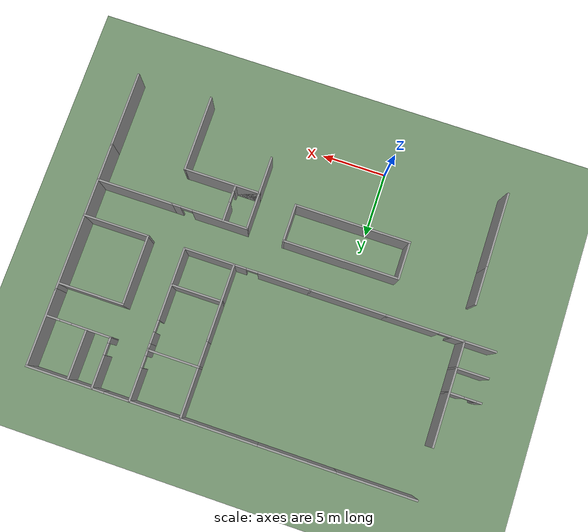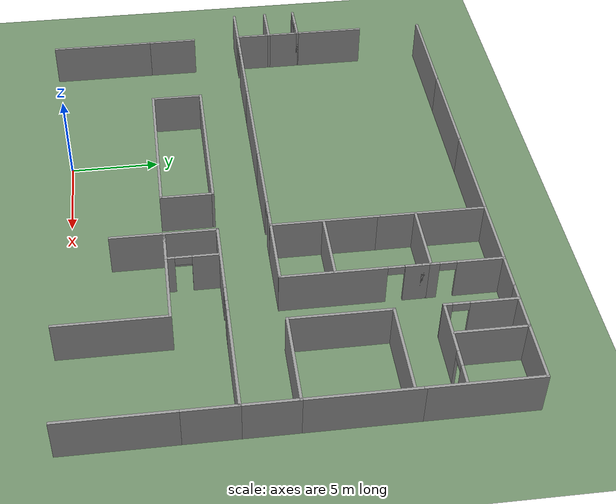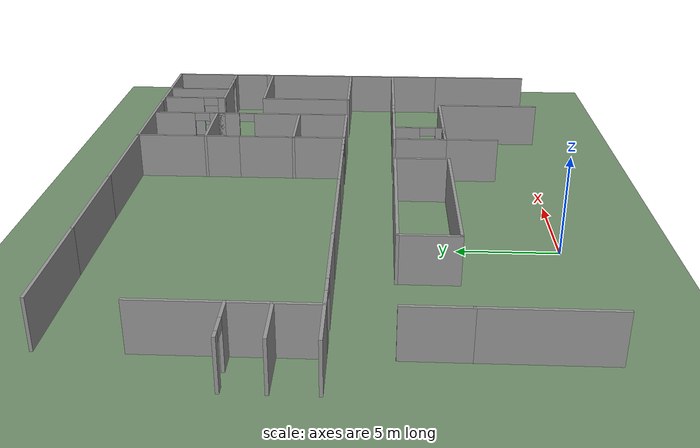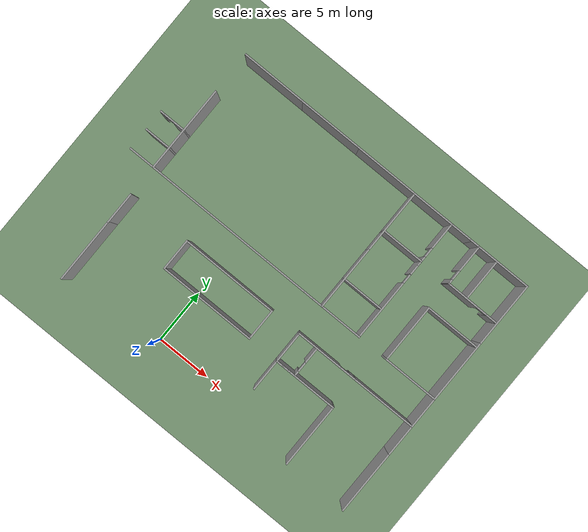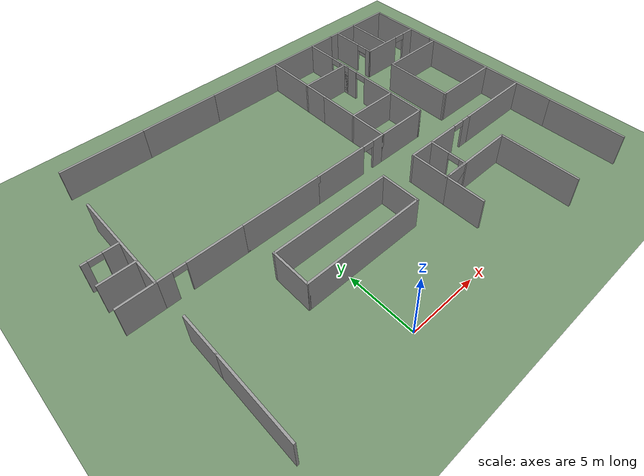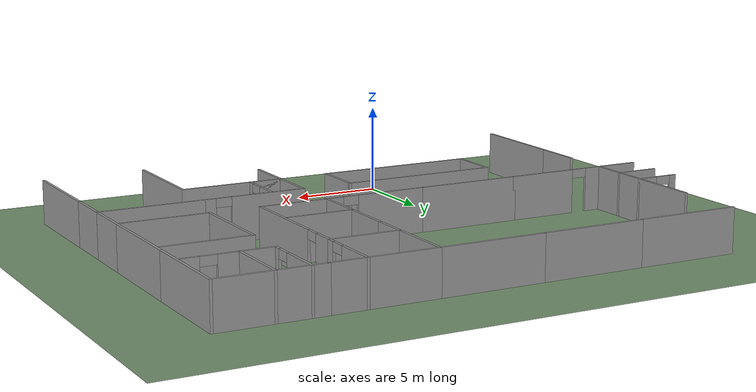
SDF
<sdf version="1.7">
 <world name="default">
  <model name="ground_plane">
   <static>1</static>
   <link name="link">
    <collision name="collision">
     <geometry><plane><normal>0 0 1</normal><size>600 600</size></plane></geometry>
     <surface>
      <contact><collide_bitmask>65535</collide_bitmask></contact>
      <friction><ode><mu>100</mu><mu2>50</mu2></ode></friction>
     </surface>
    </collision>
    <visual name="visual">
     <cast_shadows>0</cast_shadows>
     <geometry><plane><normal>0 0 1</normal><size>100 100</size></plane></geometry>
     <material><ambient>0.45 0.57 0.43 1</ambient><diffuse>0.45 0.57 0.43 1</diffuse></material>
    </visual>
   </link>
  </model>
  <model name="myhal_V3">
   <pose>-0.2201 2.1339 0 0 -0 0</pose>
   <link name="Wall_319">
    <collision name="Wall_319_Collision">
     <geometry><box><size>6 0.15 2.5</size></box></geometry>
     <pose>0 0 1.25 0 -0 0</pose>
    </collision>
    <visual name="Wall_319_Visual">
     <pose>0 0 1.25 0 -0 0</pose>
     <geometry><box><size>6 0.15 2.5</size></box></geometry>
     <material>
      <script><uri>file://media/materials/scripts/gazebo.material</uri><name>Gazebo/Grey</name></script>
      <ambient>1 1 1 1</ambient>
     </material>
     <meta><layer>0</layer></meta>
    </visual>
    <pose>20.475 17.4 0 0 -0 -1.5708</pose>
   </link>
   <link name="Wall_321">
    <collision name="Wall_321_Collision">
     <geometry><box><size>6 0.15 2.5</size></box></geometry>
     <pose>0 0 1.25 0 -0 0</pose>
    </collision>
    <visual name="Wall_321_Visual">
     <pose>0 0 1.25 0 -0 0</pose>
     <geometry><box><size>6 0.15 2.5</size></box></geometry>
     <material>
      <script><uri>file://media/materials/scripts/gazebo.material</uri><name>Gazebo/Grey</name></script>
      <ambient>1 1 1 1</ambient>
     </material>
     <meta><layer>0</layer></meta>
    </visual>
    <pose>20.475 11.55 0 0 -0 -1.5708</pose>
   </link>
   <link name="Wall_323">
    <collision name="Wall_323_Collision">
     <geometry><box><size>3 0.15 2.5</size></box></geometry>
     <pose>0 0 1.25 0 -0 0</pose>
    </collision>
    <visual name="Wall_323_Visual">
     <pose>0 0 1.25 0 -0 0</pose>
     <geometry><box><size>3 0.15 2.5</size></box></geometry>
     <material>
      <script><uri>file://media/materials/scripts/gazebo.material</uri><name>Gazebo/Grey</name></script>
      <ambient>1 1 1 1</ambient>
     </material>
     <meta><layer>0</layer></meta>
    </visual>
    <pose>20.475 7.2 0 0 -0 -1.5708</pose>
   </link>
   <link name="Wall_324">
    <collision name="Wall_324_Collision">
     <geometry><box><size>3 0.15 2.5</size></box></geometry>
     <pose>0 0 1.25 0 -0 0</pose>
    </collision>
    <visual name="Wall_324_Visual">
     <pose>0 0 1.25 0 -0 0</pose>
     <geometry><box><size>3 0.15 2.5</size></box></geometry>
     <material>
      <script><uri>file://media/materials/scripts/gazebo.material</uri><name>Gazebo/Grey</name></script>
      <ambient>1 1 1 1</ambient>
     </material>
     <meta><layer>0</layer></meta>
    </visual>
    <pose>20.475 4.35 0 0 -0 -1.5708</pose>
   </link>
   <link name="Wall_326">
    <collision name="Wall_326_Collision">
     <geometry><box><size>6 0.15 2.5</size></box></geometry>
     <pose>0 0 1.25 0 -0 0</pose>
    </collision>
    <visual name="Wall_326_Visual">
     <pose>0 0 1.25 0 -0 0</pose>
     <geometry><box><size>6 0.15 2.5</size></box></geometry>
     <material>
      <script><uri>file://media/materials/scripts/gazebo.material</uri><name>Gazebo/Grey</name></script>
      <ambient>1 1 1 1</ambient>
     </material>
     <meta><layer>0</layer></meta>
    </visual>
    <pose>20.475 0 0 0 -0 -1.5708</pose>
   </link>
   <link name="Wall_333">
    <collision name="Wall_333_Collision">
     <geometry><box><size>6 0.15 2.5</size></box></geometry>
     <pose>0 0 1.25 0 -0 0</pose>
    </collision>
    <visual name="Wall_333_Visual">
     <pose>0 0 1.25 0 -0 0</pose>
     <geometry><box><size>6 0.15 2.5</size></box></geometry>
     <material>
      <script><uri>file://media/materials/scripts/gazebo.material</uri><name>Gazebo/Grey</name></script>
      <ambient>1 1 1 1</ambient>
     </material>
     <meta><layer>0</layer></meta>
    </visual>
    <pose>17.55 20.325 0 0 -0 3.14159</pose>
   </link>
   <link name="Wall_334">
    <collision name="Wall_334_Collision">
     <geometry><box><size>6 0.15 2.5</size></box></geometry>
     <pose>0 0 1.25 0 -0 0</pose>
    </collision>
    <visual name="Wall_334_Visual">
     <pose>0 0 1.25 0 -0 0</pose>
     <geometry><box><size>6 0.15 2.5</size></box></geometry>
     <material>
      <script><uri>file://media/materials/scripts/gazebo.material</uri><name>Gazebo/Grey</name></script>
      <ambient>1 1 1 1</ambient>
     </material>
     <meta><layer>0</layer></meta>
    </visual>
    <pose>11.7 20.325 0 0 -0 3.14159</pose>
   </link>
   <link name="Wall_335">
    <collision name="Wall_335_Collision">
     <geometry><box><size>6 0.15 2.5</size></box></geometry>
     <pose>0 0 1.25 0 -0 0</pose>
    </collision>
    <visual name="Wall_335_Visual">
     <pose>0 0 1.25 0 -0 0</pose>
     <geometry><box><size>6 0.15 2.5</size></box></geometry>
     <material>
      <script><uri>file://media/materials/scripts/gazebo.material</uri><name>Gazebo/Grey</name></script>
      <ambient>1 1 1 1</ambient>
     </material>
     <meta><layer>0</layer></meta>
    </visual>
    <pose>5.85 20.325 0 0 -0 3.14159</pose>
   </link>
   <link name="Wall_336">
    <collision name="Wall_336_Collision">
     <geometry><box><size>6 0.15 2.5</size></box></geometry>
     <pose>0 0 1.25 0 -0 0</pose>
    </collision>
    <visual name="Wall_336_Visual">
     <pose>0 0 1.25 0 -0 0</pose>
     <geometry><box><size>6 0.15 2.5</size></box></geometry>
     <material>
      <script><uri>file://media/materials/scripts/gazebo.material</uri><name>Gazebo/Grey</name></script>
      <ambient>1 1 1 1</ambient>
     </material>
     <meta><layer>0</layer></meta>
    </visual>
    <pose>-0 20.325 0 0 -0 3.14159</pose>
   </link>
   <link name="Wall_337">
    <collision name="Wall_337_Collision">
     <geometry><box><size>6 0.15 2.5</size></box></geometry>
     <pose>0 0 1.25 0 -0 0</pose>
    </collision>
    <visual name="Wall_337_Visual">
     <pose>0 0 1.25 0 -0 0</pose>
     <geometry><box><size>6 0.15 2.5</size></box></geometry>
     <material>
      <script><uri>file://media/materials/scripts/gazebo.material</uri><name>Gazebo/Grey</name></script>
      <ambient>1 1 1 1</ambient>
     </material>
     <meta><layer>0</layer></meta>
    </visual>
    <pose>-5.85 20.325 0 0 -0 3.14159</pose>
   </link>
   <link name="Wall_362">
    <collision name="Wall_362_Collision">
     <geometry><box><size>8 0.15 2.5</size></box></geometry>
     <pose>0 0 1.25 0 -0 0</pose>
    </collision>
    <visual name="Wall_362_Visual">
     <pose>0 0 1.25 0 -0 0</pose>
     <geometry><box><size>8 0.15 2.5</size></box></geometry>
     <material>
      <script><uri>file://media/materials/scripts/gazebo.material</uri><name>Gazebo/Grey</name></script>
      <ambient>1 1 1 1</ambient>
     </material>
     <meta><layer>0</layer></meta>
    </visual>
    <pose>-8.775 12.55 0 0 -0 -1.5708</pose>
   </link>
   <link name="Wall_366">
    <collision name="Wall_366_Collision">
     <geometry><box><size>2.5 0.15 2.5</size></box></geometry>
     <pose>0 0 1.25 0 -0 0</pose>
    </collision>
    <visual name="Wall_366_Visual">
     <pose>0 0 1.25 0 -0 0</pose>
     <geometry><box><size>2.5 0.15 2.5</size></box></geometry>
     <material>
      <script><uri>file://media/materials/scripts/gazebo.material</uri><name>Gazebo/Grey</name></script>
      <ambient>1 1 1 1</ambient>
     </material>
     <meta><layer>0</layer></meta>
    </visual>
    <pose>-9.95 8.625 0 0 -0 3.14159</pose>
   </link>
   <link name="Wall_368">
    <pose>-9.95 12.475 0 0 -0 0</pose>
    <visual name="Wall_368_Visual_0">
     <pose>-1.03753 0 1.25 0 -0 0</pose>
     <geometry><box><size>0.424942 0.15 2.5</size></box></geometry>
     <material>
      <script><uri>file://media/materials/scripts/gazebo.material</uri><name>Gazebo/Grey</name></script>
      <ambient>1 1 1 1</ambient>
     </material>
     <meta><layer>0</layer></meta>
    </visual>
    <collision name="Wall_368_Collision_0">
     <geometry><box><size>0.424942 0.15 2.5</size></box></geometry>
     <pose>-1.03753 0 1.25 0 -0 0</pose>
    </collision>
    <visual name="Wall_368_Visual_1">
     <pose>0.662471 0 1.25 0 -0 0</pose>
     <geometry><box><size>1.17506 0.15 2.5</size></box></geometry>
     <material>
      <script><uri>file://media/materials/scripts/gazebo.material</uri><name>Gazebo/Grey</name></script>
      <ambient>1 1 1 1</ambient>
     </material>
     <meta><layer>0</layer></meta>
    </visual>
    <collision name="Wall_368_Collision_1">
     <geometry><box><size>1.17506 0.15 2.5</size></box></geometry>
     <pose>0.662471 0 1.25 0 -0 0</pose>
    </collision>
    <visual name="Wall_368_Visual_2">
     <pose>-0.375058 0 2.25 0 -0 0</pose>
     <geometry><box><size>0.9 0.15 0.5</size></box></geometry>
     <material>
      <script><uri>file://media/materials/scripts/gazebo.material</uri><name>Gazebo/Grey</name></script>
      <ambient>1 1 1 1</ambient>
     </material>
     <meta><layer>0</layer></meta>
    </visual>
    <collision name="Wall_368_Collision_2">
     <geometry><box><size>0.9 0.15 0.5</size></box></geometry>
     <pose>-0.375058 0 2.25 0 -0 0</pose>
    </collision>
   </link>
   <link name="Wall_370">
    <pose>-5.85 8.625 0 0 -0 0</pose>
    <visual name="Wall_370_Visual_0">
     <pose>-2.45569 0 1.25 0 -0 0</pose>
     <geometry><box><size>1.08861 0.15 2.5</size></box></geometry>
     <material>
      <script><uri>file://media/materials/scripts/gazebo.material</uri><name>Gazebo/Grey</name></script>
      <ambient>1 1 1 1</ambient>
     </material>
     <meta><layer>0</layer></meta>
    </visual>
    <collision name="Wall_370_Collision_0">
     <geometry><box><size>1.08861 0.15 2.5</size></box></geometry>
     <pose>-2.45569 0 1.25 0 -0 0</pose>
    </collision>
    <visual name="Wall_370_Visual_1">
     <pose>0.994306 0 1.25 0 -0 0</pose>
     <geometry><box><size>4.01139 0.15 2.5</size></box></geometry>
     <material>
      <script><uri>file://media/materials/scripts/gazebo.material</uri><name>Gazebo/Grey</name></script>
      <ambient>1 1 1 1</ambient>
     </material>
     <meta><layer>0</layer></meta>
    </visual>
    <collision name="Wall_370_Collision_1">
     <geometry><box><size>4.01139 0.15 2.5</size></box></geometry>
     <pose>0.994306 0 1.25 0 -0 0</pose>
    </collision>
    <visual name="Wall_370_Visual_2">
     <pose>-1.46139 0 2.25 0 -0 0</pose>
     <geometry><box><size>0.9 0.15 0.5</size></box></geometry>
     <material>
      <script><uri>file://media/materials/scripts/gazebo.material</uri><name>Gazebo/Grey</name></script>
      <ambient>1 1 1 1</ambient>
     </material>
     <meta><layer>0</layer></meta>
    </visual>
    <collision name="Wall_370_Collision_2">
     <geometry><box><size>0.9 0.15 0.5</size></box></geometry>
     <pose>-1.46139 0 2.25 0 -0 0</pose>
    </collision>
   </link>
   <link name="Wall_371">
    <collision name="Wall_371_Collision">
     <geometry><box><size>6 0.15 2.5</size></box></geometry>
     <pose>0 0 1.25 0 -0 0</pose>
    </collision>
    <visual name="Wall_371_Visual">
     <pose>0 0 1.25 0 -0 0</pose>
     <geometry><box><size>6 0.15 2.5</size></box></geometry>
     <material>
      <script><uri>file://media/materials/scripts/gazebo.material</uri><name>Gazebo/Grey</name></script>
      <ambient>1 1 1 1</ambient>
     </material>
     <meta><layer>0</layer></meta>
    </visual>
    <pose>-0 8.625 0 0 -0 0</pose>
   </link>
   <link name="Wall_372">
    <pose>5.85 8.625 0 0 -0 0</pose>
    <visual name="Wall_372_Visual_0">
     <pose>-0.95746 0 1.25 0 -0 0</pose>
     <geometry><box><size>4.08508 0.15 2.5</size></box></geometry>
     <material>
      <script><uri>file://media/materials/scripts/gazebo.material</uri><name>Gazebo/Grey</name></script>
      <ambient>1 1 1 1</ambient>
     </material>
     <meta><layer>0</layer></meta>
    </visual>
    <collision name="Wall_372_Collision_0">
     <geometry><box><size>4.08508 0.15 2.5</size></box></geometry>
     <pose>-0.95746 0 1.25 0 -0 0</pose>
    </collision>
    <visual name="Wall_372_Visual_1">
     <pose>2.49254 0 1.25 0 -0 0</pose>
     <geometry><box><size>1.01492 0.15 2.5</size></box></geometry>
     <material>
      <script><uri>file://media/materials/scripts/gazebo.material</uri><name>Gazebo/Grey</name></script>
      <ambient>1 1 1 1</ambient>
     </material>
     <meta><layer>0</layer></meta>
    </visual>
    <collision name="Wall_372_Collision_1">
     <geometry><box><size>1.01492 0.15 2.5</size></box></geometry>
     <pose>2.49254 0 1.25 0 -0 0</pose>
    </collision>
    <visual name="Wall_372_Visual_2">
     <pose>1.53508 0 2.25 0 -0 0</pose>
     <geometry><box><size>0.9 0.15 0.5</size></box></geometry>
     <material>
      <script><uri>file://media/materials/scripts/gazebo.material</uri><name>Gazebo/Grey</name></script>
      <ambient>1 1 1 1</ambient>
     </material>
     <meta><layer>0</layer></meta>
    </visual>
    <collision name="Wall_372_Collision_2">
     <geometry><box><size>0.9 0.15 0.5</size></box></geometry>
     <pose>1.53508 0 2.25 0 -0 0</pose>
    </collision>
   </link>
   <link name="Wall_373">
    <collision name="Wall_373_Collision">
     <geometry><box><size>6 0.15 2.5</size></box></geometry>
     <pose>0 0 1.25 0 -0 0</pose>
    </collision>
    <visual name="Wall_373_Visual">
     <pose>0 0 1.25 0 -0 0</pose>
     <geometry><box><size>6 0.15 2.5</size></box></geometry>
     <material>
      <script><uri>file://media/materials/scripts/gazebo.material</uri><name>Gazebo/Grey</name></script>
      <ambient>1 1 1 1</ambient>
     </material>
     <meta><layer>0</layer></meta>
    </visual>
    <pose>8.775 11.55 0 0 -0 1.5708</pose>
   </link>
   <link name="Wall_374">
    <collision name="Wall_374_Collision">
     <geometry><box><size>6 0.15 2.5</size></box></geometry>
     <pose>0 0 1.25 0 -0 0</pose>
    </collision>
    <visual name="Wall_374_Visual">
     <pose>0 0 1.25 0 -0 0</pose>
     <geometry><box><size>6 0.15 2.5</size></box></geometry>
     <material>
      <script><uri>file://media/materials/scripts/gazebo.material</uri><name>Gazebo/Grey</name></script>
      <ambient>1 1 1 1</ambient>
     </material>
     <meta><layer>0</layer></meta>
    </visual>
    <pose>8.775 17.4 0 0 -0 1.5708</pose>
   </link>
   <link name="Wall_376">
    <collision name="Wall_376_Collision">
     <geometry><box><size>4 0.15 2.5</size></box></geometry>
     <pose>0 0 1.25 0 -0 0</pose>
    </collision>
    <visual name="Wall_376_Visual">
     <pose>0 0 1.25 0 -0 0</pose>
     <geometry><box><size>4 0.15 2.5</size></box></geometry>
     <material>
      <script><uri>file://media/materials/scripts/gazebo.material</uri><name>Gazebo/Grey</name></script>
      <ambient>1 1 1 1</ambient>
     </material>
     <meta><layer>0</layer></meta>
    </visual>
    <pose>10.7 8.625 0 0 -0 0</pose>
   </link>
   <link name="Wall_377">
    <pose>12.625 12.55 0 0 -0 1.5708</pose>
    <visual name="Wall_377_Visual_0">
     <pose>-1.16536 0 1.25 0 -0 0</pose>
     <geometry><box><size>5.66928 0.15 2.5</size></box></geometry>
     <material>
      <script><uri>file://media/materials/scripts/gazebo.material</uri><name>Gazebo/Grey</name></script>
      <ambient>1 1 1 1</ambient>
     </material>
     <meta><layer>0</layer></meta>
    </visual>
    <collision name="Wall_377_Collision_0">
     <geometry><box><size>5.66928 0.15 2.5</size></box></geometry>
     <pose>-1.16536 0 1.25 0 -0 0</pose>
    </collision>
    <visual name="Wall_377_Visual_1">
     <pose>3.28464 0 1.25 0 -0 0</pose>
     <geometry><box><size>1.43072 0.15 2.5</size></box></geometry>
     <material>
      <script><uri>file://media/materials/scripts/gazebo.material</uri><name>Gazebo/Grey</name></script>
      <ambient>1 1 1 1</ambient>
     </material>
     <meta><layer>0</layer></meta>
    </visual>
    <collision name="Wall_377_Collision_1">
     <geometry><box><size>1.43072 0.15 2.5</size></box></geometry>
     <pose>3.28464 0 1.25 0 -0 0</pose>
    </collision>
    <visual name="Wall_377_Visual_2">
     <pose>3.72381 0 1.25 0 -0 0</pose>
     <geometry><box><size>0.552386 0.15 2.5</size></box></geometry>
     <material>
      <script><uri>file://media/materials/scripts/gazebo.material</uri><name>Gazebo/Grey</name></script>
      <ambient>1 1 1 1</ambient>
     </material>
     <meta><layer>0</layer></meta>
    </visual>
    <collision name="Wall_377_Collision_2">
     <geometry><box><size>0.552386 0.15 2.5</size></box></geometry>
     <pose>3.72381 0 1.25 0 -0 0</pose>
    </collision>
    <visual name="Wall_377_Visual_3">
     <pose>2.10845 0 2.25 0 -0 0</pose>
     <geometry><box><size>0.878338 0.15 0.5</size></box></geometry>
     <material>
      <script><uri>file://media/materials/scripts/gazebo.material</uri><name>Gazebo/Grey</name></script>
      <ambient>1 1 1 1</ambient>
     </material>
     <meta><layer>0</layer></meta>
    </visual>
    <collision name="Wall_377_Collision_3">
     <geometry><box><size>0.878338 0.15 0.5</size></box></geometry>
     <pose>2.10845 0 2.25 0 -0 0</pose>
    </collision>
   </link>
   <link name="Wall_378">
    <pose>12.625 18.4 0 0 -0 1.5708</pose>
    <visual name="Wall_378_Visual_0">
     <pose>-1.73364 0 1.25 0 -0 0</pose>
     <geometry><box><size>0.532712 0.15 2.5</size></box></geometry>
     <material>
      <script><uri>file://media/materials/scripts/gazebo.material</uri><name>Gazebo/Grey</name></script>
      <ambient>1 1 1 1</ambient>
     </material>
     <meta><layer>0</layer></meta>
    </visual>
    <collision name="Wall_378_Collision_0">
     <geometry><box><size>0.532712 0.15 2.5</size></box></geometry>
     <pose>-1.73364 0 1.25 0 -0 0</pose>
    </collision>
    <visual name="Wall_378_Visual_1">
     <pose>0.716356 0 1.25 0 -0 0</pose>
     <geometry><box><size>2.56729 0.15 2.5</size></box></geometry>
     <material>
      <script><uri>file://media/materials/scripts/gazebo.material</uri><name>Gazebo/Grey</name></script>
      <ambient>1 1 1 1</ambient>
     </material>
     <meta><layer>0</layer></meta>
    </visual>
    <collision name="Wall_378_Collision_1">
     <geometry><box><size>2.56729 0.15 2.5</size></box></geometry>
     <pose>0.716356 0 1.25 0 -0 0</pose>
    </collision>
    <visual name="Wall_378_Visual_2">
     <pose>-1.01729 0 2.25 0 -0 0</pose>
     <geometry><box><size>0.9 0.15 0.5</size></box></geometry>
     <material>
      <script><uri>file://media/materials/scripts/gazebo.material</uri><name>Gazebo/Grey</name></script>
      <ambient>1 1 1 1</ambient>
     </material>
     <meta><layer>0</layer></meta>
    </visual>
    <collision name="Wall_378_Collision_2">
     <geometry><box><size>0.9 0.15 0.5</size></box></geometry>
     <pose>-1.01729 0 2.25 0 -0 0</pose>
    </collision>
   </link>
   <link name="Wall_380">
    <collision name="Wall_380_Collision">
     <geometry><box><size>4 0.15 2.5</size></box></geometry>
     <pose>0 0 1.25 0 -0 0</pose>
    </collision>
    <visual name="Wall_380_Visual">
     <pose>0 0 1.25 0 -0 0</pose>
     <geometry><box><size>4 0.15 2.5</size></box></geometry>
     <material>
      <script><uri>file://media/materials/scripts/gazebo.material</uri><name>Gazebo/Grey</name></script>
      <ambient>1 1 1 1</ambient>
     </material>
     <meta><layer>0</layer></meta>
    </visual>
    <pose>10.7 16.475 0 0 -0 3.14159</pose>
   </link>
   <link name="Wall_389">
    <collision name="Wall_389_Collision">
     <geometry><box><size>5.15 0.15 2.5</size></box></geometry>
     <pose>0 0 1.25 0 -0 0</pose>
    </collision>
    <visual name="Wall_389_Visual">
     <pose>0 0 1.25 0 -0 0</pose>
     <geometry><box><size>5.15 0.15 2.5</size></box></geometry>
     <material>
      <script><uri>file://media/materials/scripts/gazebo.material</uri><name>Gazebo/Grey</name></script>
      <ambient>1 1 1 1</ambient>
     </material>
     <meta><layer>0</layer></meta>
    </visual>
    <pose>17.975 8.625 0 0 -0 0</pose>
   </link>
   <link name="Wall_392">
    <pose>17.9 16.4907 0 0 -0 -0.006468</pose>
    <visual name="Wall_392_Visual_0">
     <pose>-0.960517 0 1.25 0 -0 0</pose>
     <geometry><box><size>3.07897 0.15 2.5</size></box></geometry>
     <material>
      <script><uri>file://media/materials/scripts/gazebo.material</uri><name>Gazebo/Grey</name></script>
      <ambient>1 1 1 1</ambient>
     </material>
     <meta><layer>0</layer></meta>
    </visual>
    <collision name="Wall_392_Collision_0">
     <geometry><box><size>3.07897 0.15 2.5</size></box></geometry>
     <pose>-0.960517 0 1.25 0 -0 0</pose>
    </collision>
    <visual name="Wall_392_Visual_1">
     <pose>1.98948 0 1.25 0 -0 0</pose>
     <geometry><box><size>1.02103 0.15 2.5</size></box></geometry>
     <material>
      <script><uri>file://media/materials/scripts/gazebo.material</uri><name>Gazebo/Grey</name></script>
      <ambient>1 1 1 1</ambient>
     </material>
     <meta><layer>0</layer></meta>
    </visual>
    <collision name="Wall_392_Collision_1">
     <geometry><box><size>1.02103 0.15 2.5</size></box></geometry>
     <pose>1.98948 0 1.25 0 -0 0</pose>
    </collision>
    <visual name="Wall_392_Visual_2">
     <pose>1.02897 0 2.25 0 -0 0</pose>
     <geometry><box><size>0.9 0.15 0.5</size></box></geometry>
     <material>
      <script><uri>file://media/materials/scripts/gazebo.material</uri><name>Gazebo/Grey</name></script>
      <ambient>1 1 1 1</ambient>
     </material>
     <meta><layer>0</layer></meta>
    </visual>
    <collision name="Wall_392_Collision_2">
     <geometry><box><size>0.9 0.15 0.5</size></box></geometry>
     <pose>1.02897 0 2.25 0 -0 0</pose>
    </collision>
   </link>
   <link name="Wall_394">
    <pose>15.475 18.4157 0 0 -0 1.5708</pose>
    <visual name="Wall_394_Visual_0">
     <pose>-1.73721 0 1.25 0 -0 0</pose>
     <geometry><box><size>0.494202 0.15 2.5</size></box></geometry>
     <material>
      <script><uri>file://media/materials/scripts/gazebo.material</uri><name>Gazebo/Grey</name></script>
      <ambient>1 1 1 1</ambient>
     </material>
     <meta><layer>0</layer></meta>
    </visual>
    <collision name="Wall_394_Collision_0">
     <geometry><box><size>0.494202 0.15 2.5</size></box></geometry>
     <pose>-1.73721 0 1.25 0 -0 0</pose>
    </collision>
    <visual name="Wall_394_Visual_1">
     <pose>0.697101 0 1.25 0 -0 0</pose>
     <geometry><box><size>2.57443 0.15 2.5</size></box></geometry>
     <material>
      <script><uri>file://media/materials/scripts/gazebo.material</uri><name>Gazebo/Grey</name></script>
      <ambient>1 1 1 1</ambient>
     </material>
     <meta><layer>0</layer></meta>
    </visual>
    <collision name="Wall_394_Collision_1">
     <geometry><box><size>2.57443 0.15 2.5</size></box></geometry>
     <pose>0.697101 0 1.25 0 -0 0</pose>
    </collision>
    <visual name="Wall_394_Visual_2">
     <pose>-1.04011 0 2.25 0 -0 0</pose>
     <geometry><box><size>0.9 0.15 0.5</size></box></geometry>
     <material>
      <script><uri>file://media/materials/scripts/gazebo.material</uri><name>Gazebo/Grey</name></script>
      <ambient>1 1 1 1</ambient>
     </material>
     <meta><layer>0</layer></meta>
    </visual>
    <collision name="Wall_394_Collision_2">
     <geometry><box><size>0.9 0.15 0.5</size></box></geometry>
     <pose>-1.04011 0 2.25 0 -0 0</pose>
    </collision>
   </link>
   <link name="Wall_396">
    <collision name="Wall_396_Collision">
     <geometry><box><size>5.5 0.15 2.5</size></box></geometry>
     <pose>0 0 1.25 0 -0 0</pose>
    </collision>
    <visual name="Wall_396_Visual">
     <pose>0 0 1.25 0 -0 0</pose>
     <geometry><box><size>5.5 0.15 2.5</size></box></geometry>
     <material>
      <script><uri>file://media/materials/scripts/gazebo.material</uri><name>Gazebo/Grey</name></script>
      <ambient>1 1 1 1</ambient>
     </material>
     <meta><layer>0</layer></meta>
    </visual>
    <pose>15.475 11.3 0 0 -0 1.5708</pose>
   </link>
   <link name="Wall_397">
    <collision name="Wall_397_Collision">
     <geometry><box><size>5 0.15 2.5</size></box></geometry>
     <pose>0 0 1.25 0 -0 0</pose>
    </collision>
    <visual name="Wall_397_Visual">
     <pose>0 0 1.25 0 -0 0</pose>
     <geometry><box><size>5 0.15 2.5</size></box></geometry>
     <material>
      <script><uri>file://media/materials/scripts/gazebo.material</uri><name>Gazebo/Grey</name></script>
      <ambient>1 1 1 1</ambient>
     </material>
     <meta><layer>0</layer></meta>
    </visual>
    <pose>17.9 13.975 0 0 -0 0</pose>
   </link>
   <link name="Wall_400">
    <collision name="Wall_400_Collision">
     <geometry><box><size>3.96863 0.15 2.5</size></box></geometry>
     <pose>0 0 1.25 0 -0 0</pose>
    </collision>
    <visual name="Wall_400_Visual">
     <pose>0 0 1.25 0 -0 0</pose>
     <geometry><box><size>3.96863 0.15 2.5</size></box></geometry>
     <material>
      <script><uri>file://media/materials/scripts/gazebo.material</uri><name>Gazebo/Grey</name></script>
      <ambient>1 1 1 1</ambient>
     </material>
     <meta><layer>0</layer></meta>
    </visual>
    <pose>17.325 18.4157 0 0 -0 1.5708</pose>
   </link>
   <link name="Wall_447">
    <collision name="Wall_447_Collision">
     <geometry><box><size>3 0.15 2.5</size></box></geometry>
     <pose>0 0 1.25 0 -0 0</pose>
    </collision>
    <visual name="Wall_447_Visual">
     <pose>0 0 1.25 0 -0 0</pose>
     <geometry><box><size>3 0.15 2.5</size></box></geometry>
     <material>
      <script><uri>file://media/materials/scripts/gazebo.material</uri><name>Gazebo/Grey</name></script>
      <ambient>1 1 1 1</ambient>
     </material>
     <meta><layer>0</layer></meta>
    </visual>
    <pose>-8.775 4.35 0 0 -0 -1.5708</pose>
   </link>
   <link name="Wall_448">
    <collision name="Wall_448_Collision">
     <geometry><box><size>6 0.15 2.5</size></box></geometry>
     <pose>0 0 1.25 0 -0 0</pose>
    </collision>
    <visual name="Wall_448_Visual">
     <pose>0 0 1.25 0 -0 0</pose>
     <geometry><box><size>6 0.15 2.5</size></box></geometry>
     <material>
      <script><uri>file://media/materials/scripts/gazebo.material</uri><name>Gazebo/Grey</name></script>
      <ambient>1 1 1 1</ambient>
     </material>
     <meta><layer>0</layer></meta>
    </visual>
    <pose>-8.775 0 0 0 -0 -1.5708</pose>
   </link>
   <link name="Wall_464">
    <collision name="Wall_464_Collision">
     <geometry><box><size>3 0.15 2.5</size></box></geometry>
     <pose>0 0 1.25 0 -0 0</pose>
    </collision>
    <visual name="Wall_464_Visual">
     <pose>0 0 1.25 0 -0 0</pose>
     <geometry><box><size>3 0.15 2.5</size></box></geometry>
     <material>
      <script><uri>file://media/materials/scripts/gazebo.material</uri><name>Gazebo/Grey</name></script>
      <ambient>1 1 1 1</ambient>
     </material>
     <meta><layer>0</layer></meta>
    </visual>
    <pose>20.475 7.2 0 0 -0 -1.5708</pose>
   </link>
   <link name="Wall_465">
    <collision name="Wall_465_Collision">
     <geometry><box><size>6 0.15 2.5</size></box></geometry>
     <pose>0 0 1.25 0 -0 0</pose>
    </collision>
    <visual name="Wall_465_Visual">
     <pose>0 0 1.25 0 -0 0</pose>
     <geometry><box><size>6 0.15 2.5</size></box></geometry>
     <material>
      <script><uri>file://media/materials/scripts/gazebo.material</uri><name>Gazebo/Grey</name></script>
      <ambient>1 1 1 1</ambient>
     </material>
     <meta><layer>0</layer></meta>
    </visual>
    <pose>17.55 5.775 0 0 -0 3.14159</pose>
   </link>
   <link name="Wall_466">
    <pose>11.7 5.775 0 0 -0 3.14159</pose>
    <visual name="Wall_466_Visual_0">
     <pose>-2.61565 0 1.25 0 -0 0</pose>
     <geometry><box><size>0.768694 0.15 2.5</size></box></geometry>
     <material>
      <script><uri>file://media/materials/scripts/gazebo.material</uri><name>Gazebo/Grey</name></script>
      <ambient>1 1 1 1</ambient>
     </material>
     <meta><layer>0</layer></meta>
    </visual>
    <collision name="Wall_466_Collision_0">
     <geometry><box><size>0.768694 0.15 2.5</size></box></geometry>
     <pose>-2.61565 0 1.25 0 -0 0</pose>
    </collision>
    <visual name="Wall_466_Visual_1">
     <pose>0.834347 0 1.25 0 -0 0</pose>
     <geometry><box><size>4.33131 0.15 2.5</size></box></geometry>
     <material>
      <script><uri>file://media/materials/scripts/gazebo.material</uri><name>Gazebo/Grey</name></script>
      <ambient>1 1 1 1</ambient>
     </material>
     <meta><layer>0</layer></meta>
    </visual>
    <collision name="Wall_466_Collision_1">
     <geometry><box><size>4.33131 0.15 2.5</size></box></geometry>
     <pose>0.834347 0 1.25 0 -0 0</pose>
    </collision>
    <visual name="Wall_466_Visual_2">
     <pose>-1.78131 0 2.25 0 -0 0</pose>
     <geometry><box><size>0.9 0.15 0.5</size></box></geometry>
     <material>
      <script><uri>file://media/materials/scripts/gazebo.material</uri><name>Gazebo/Grey</name></script>
      <ambient>1 1 1 1</ambient>
     </material>
     <meta><layer>0</layer></meta>
    </visual>
    <collision name="Wall_466_Collision_2">
     <geometry><box><size>0.9 0.15 0.5</size></box></geometry>
     <pose>-1.78131 0 2.25 0 -0 0</pose>
    </collision>
   </link>
   <link name="Wall_467">
    <collision name="Wall_467_Collision">
     <geometry><box><size>3 0.15 2.5</size></box></geometry>
     <pose>0 0 1.25 0 -0 0</pose>
    </collision>
    <visual name="Wall_467_Visual">
     <pose>0 0 1.25 0 -0 0</pose>
     <geometry><box><size>3 0.15 2.5</size></box></geometry>
     <material>
      <script><uri>file://media/materials/scripts/gazebo.material</uri><name>Gazebo/Grey</name></script>
      <ambient>1 1 1 1</ambient>
     </material>
     <meta><layer>0</layer></meta>
    </visual>
    <pose>8.775 4.35 0 0 -0 -1.5708</pose>
   </link>
   <link name="Wall_468">
    <collision name="Wall_468_Collision">
     <geometry><box><size>6 0.15 2.5</size></box></geometry>
     <pose>0 0 1.25 0 -0 0</pose>
    </collision>
    <visual name="Wall_468_Visual">
     <pose>0 0 1.25 0 -0 0</pose>
     <geometry><box><size>6 0.15 2.5</size></box></geometry>
     <material>
      <script><uri>file://media/materials/scripts/gazebo.material</uri><name>Gazebo/Grey</name></script>
      <ambient>1 1 1 1</ambient>
     </material>
     <meta><layer>0</layer></meta>
    </visual>
    <pose>11.7 2.925 0 0 -0 0</pose>
   </link>
   <link name="Wall_471">
    <collision name="Wall_471_Collision">
     <geometry><box><size>2 0.15 2.5</size></box></geometry>
     <pose>0 0 1.25 0 -0 0</pose>
    </collision>
    <visual name="Wall_471_Visual">
     <pose>0 0 1.25 0 -0 0</pose>
     <geometry><box><size>2 0.15 2.5</size></box></geometry>
     <material>
      <script><uri>file://media/materials/scripts/gazebo.material</uri><name>Gazebo/Grey</name></script>
      <ambient>1 1 1 1</ambient>
     </material>
     <meta><layer>0</layer></meta>
    </visual>
    <pose>9.7 2.925 0 0 -0 0</pose>
   </link>
   <link name="Wall_472">
    <pose>10.625 4.35 0 0 -0 1.5708</pose>
    <visual name="Wall_472_Visual_0">
     <pose>-1.23229 0 1.25 0 -0 0</pose>
     <geometry><box><size>0.535427 0.15 2.5</size></box></geometry>
     <material>
      <script><uri>file://media/materials/scripts/gazebo.material</uri><name>Gazebo/Grey</name></script>
      <ambient>1 1 1 1</ambient>
     </material>
     <meta><layer>0</layer></meta>
    </visual>
    <collision name="Wall_472_Collision_0">
     <geometry><box><size>0.535427 0.15 2.5</size></box></geometry>
     <pose>-1.23229 0 1.25 0 -0 0</pose>
    </collision>
    <visual name="Wall_472_Visual_1">
     <pose>0.717714 0 1.25 0 -0 0</pose>
     <geometry><box><size>1.56457 0.15 2.5</size></box></geometry>
     <material>
      <script><uri>file://media/materials/scripts/gazebo.material</uri><name>Gazebo/Grey</name></script>
      <ambient>1 1 1 1</ambient>
     </material>
     <meta><layer>0</layer></meta>
    </visual>
    <collision name="Wall_472_Collision_1">
     <geometry><box><size>1.56457 0.15 2.5</size></box></geometry>
     <pose>0.717714 0 1.25 0 -0 0</pose>
    </collision>
    <visual name="Wall_472_Visual_2">
     <pose>-0.514573 0 2.25 0 -0 0</pose>
     <geometry><box><size>0.9 0.15 0.5</size></box></geometry>
     <material>
      <script><uri>file://media/materials/scripts/gazebo.material</uri><name>Gazebo/Grey</name></script>
      <ambient>1 1 1 1</ambient>
     </material>
     <meta><layer>0</layer></meta>
    </visual>
    <collision name="Wall_472_Collision_2">
     <geometry><box><size>0.9 0.15 0.5</size></box></geometry>
     <pose>-0.514573 0 2.25 0 -0 0</pose>
    </collision>
   </link>
   <link name="Wall_474">
    <collision name="Wall_474_Collision">
     <geometry><box><size>6 0.15 2.5</size></box></geometry>
     <pose>0 0 1.25 0 -0 0</pose>
    </collision>
    <visual name="Wall_474_Visual">
     <pose>0 0 1.25 0 -0 0</pose>
     <geometry><box><size>6 0.15 2.5</size></box></geometry>
     <material>
      <script><uri>file://media/materials/scripts/gazebo.material</uri><name>Gazebo/Grey</name></script>
      <ambient>1 1 1 1</ambient>
     </material>
     <meta><layer>0</layer></meta>
    </visual>
    <pose>14.625 0 0 0 -0 -1.5708</pose>
   </link>
   <link name="Wall_478">
    <collision name="Wall_478_Collision">
     <geometry><box><size>3 0.15 2.5</size></box></geometry>
     <pose>0 0 1.25 0 -0 0</pose>
    </collision>
    <visual name="Wall_478_Visual">
     <pose>0 0 1.25 0 -0 0</pose>
     <geometry><box><size>3 0.15 2.5</size></box></geometry>
     <material>
      <script><uri>file://media/materials/scripts/gazebo.material</uri><name>Gazebo/Grey</name></script>
      <ambient>1 1 1 1</ambient>
     </material>
     <meta><layer>0</layer></meta>
    </visual>
    <pose>8.775 1.5 0 0 -0 1.5708</pose>
   </link>
   <link name="Wall_501">
    <collision name="Wall_501_Collision">
     <geometry><box><size>3 0.15 2.5</size></box></geometry>
     <pose>0 0 1.25 0 -0 0</pose>
    </collision>
    <visual name="Wall_501_Visual">
     <pose>0 0 1.25 0 -0 0</pose>
     <geometry><box><size>3 0.15 2.5</size></box></geometry>
     <material>
      <script><uri>file://media/materials/scripts/gazebo.material</uri><name>Gazebo/Grey</name></script>
      <ambient>1 1 1 1</ambient>
     </material>
     <meta><layer>0</layer></meta>
    </visual>
    <pose>-2.925 4.35 0 0 -0 -1.5708</pose>
   </link>
   <link name="Wall_502">
    <collision name="Wall_502_Collision">
     <geometry><box><size>9 0.15 2.5</size></box></geometry>
     <pose>0 0 1.25 0 -0 0</pose>
    </collision>
    <visual name="Wall_502_Visual">
     <pose>0 0 1.25 0 -0 0</pose>
     <geometry><box><size>9 0.15 2.5</size></box></geometry>
     <material>
      <script><uri>file://media/materials/scripts/gazebo.material</uri><name>Gazebo/Grey</name></script>
      <ambient>1 1 1 1</ambient>
     </material>
     <meta><layer>0</layer></meta>
    </visual>
    <pose>1.5 2.925 0 0 -0 0</pose>
   </link>
   <link name="Wall_503">
    <collision name="Wall_503_Collision">
     <geometry><box><size>3 0.15 2.5</size></box></geometry>
     <pose>0 0 1.25 0 -0 0</pose>
    </collision>
    <visual name="Wall_503_Visual">
     <pose>0 0 1.25 0 -0 0</pose>
     <geometry><box><size>3 0.15 2.5</size></box></geometry>
     <material>
      <script><uri>file://media/materials/scripts/gazebo.material</uri><name>Gazebo/Grey</name></script>
      <ambient>1 1 1 1</ambient>
     </material>
     <meta><layer>0</layer></meta>
    </visual>
    <pose>5.925 4.35 0 0 -0 1.5708</pose>
   </link>
   <link name="Wall_504">
    <collision name="Wall_504_Collision">
     <geometry><box><size>9 0.15 2.5</size></box></geometry>
     <pose>0 0 1.25 0 -0 0</pose>
    </collision>
    <visual name="Wall_504_Visual">
     <pose>0 0 1.25 0 -0 0</pose>
     <geometry><box><size>9 0.15 2.5</size></box></geometry>
     <material>
      <script><uri>file://media/materials/scripts/gazebo.material</uri><name>Gazebo/Grey</name></script>
      <ambient>1 1 1 1</ambient>
     </material>
     <meta><layer>0</layer></meta>
    </visual>
    <pose>1.5 5.775 0 0 -0 3.14159</pose>
   </link>
   <link name="Wall_584">
    <collision name="Wall_584_Collision">
     <geometry><box><size>2.5 0.15 2.5</size></box></geometry>
     <pose>0 0 1.25 0 -0 0</pose>
    </collision>
    <visual name="Wall_584_Visual">
     <pose>0 0 1.25 0 -0 0</pose>
     <geometry><box><size>2.5 0.15 2.5</size></box></geometry>
     <material>
      <script><uri>file://media/materials/scripts/gazebo.material</uri><name>Gazebo/Grey</name></script>
      <ambient>1 1 1 1</ambient>
     </material>
     <meta><layer>0</layer></meta>
    </visual>
    <pose>-9.95 10.625 0 0 -0 0</pose>
   </link>
   <link name="Wall_587">
    <collision name="Wall_587_Collision">
     <geometry><box><size>4 0.15 2.5</size></box></geometry>
     <pose>0 0 1.25 0 -0 0</pose>
    </collision>
    <visual name="Wall_587_Visual">
     <pose>0 0 1.25 0 -0 0</pose>
     <geometry><box><size>4 0.15 2.5</size></box></geometry>
     <material>
      <script><uri>file://media/materials/scripts/gazebo.material</uri><name>Gazebo/Grey</name></script>
      <ambient>1 1 1 1</ambient>
     </material>
     <meta><layer>0</layer></meta>
    </visual>
    <pose>10.7 11.475 0 0 -0 3.14159</pose>
   </link>
   <static>1</static>
  </model>
 </world>
</sdf>
